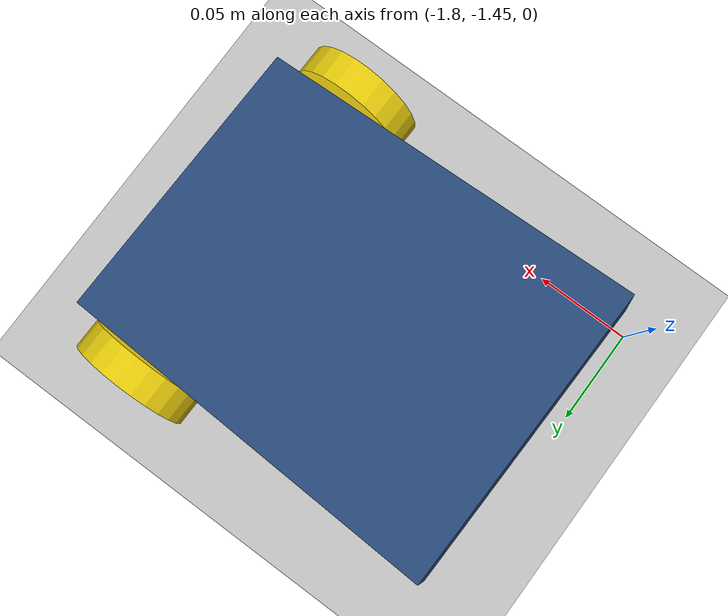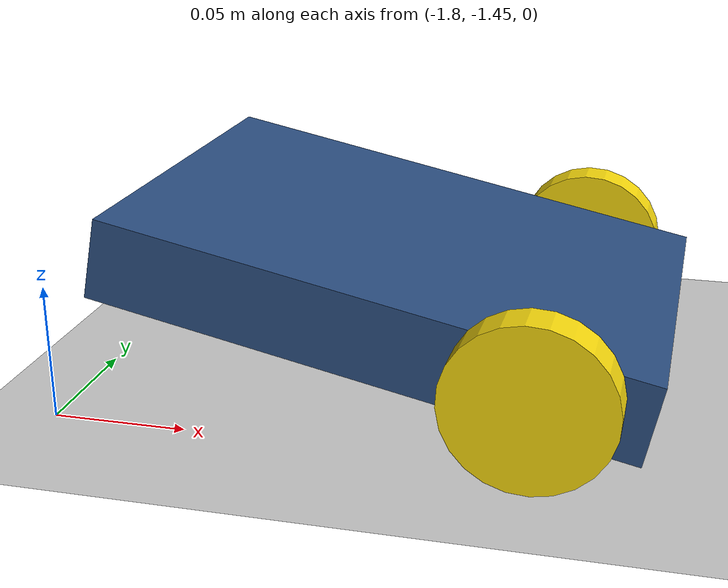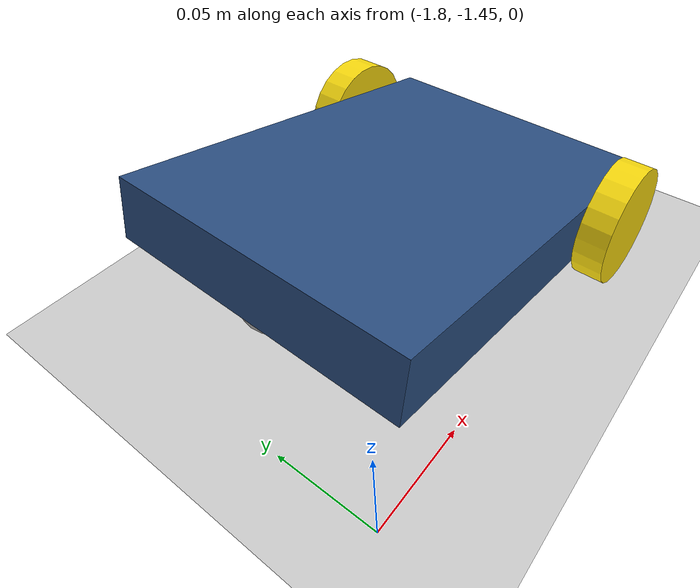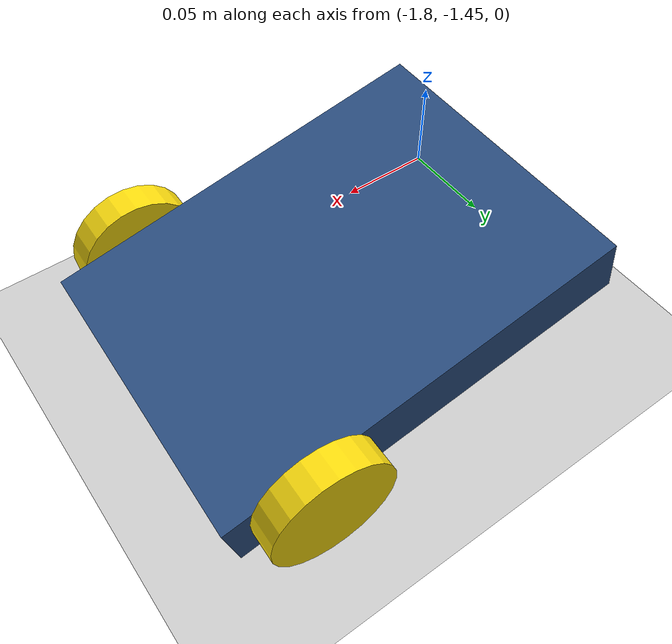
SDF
<sdf version="1.6">
 <world name="default">
  <model name="ground_plane">
   <static>1</static>
   <link name="link">
    <collision name="collision">
     <geometry><plane><normal>0 0 1</normal><size>100 100</size></plane></geometry>
     <surface><friction><ode><mu>100</mu><mu2>50</mu2></ode></friction></surface>
    </collision>
    <visual name="visual">
     <cast_shadows>0</cast_shadows>
     <geometry><plane><normal>0 0 1</normal><size>100 100</size></plane></geometry>
     <material>
      <script><uri>file://media/materials/scripts/gazebo.material</uri><name>Gazebo/Grey</name></script>
     </material>
    </visual>
   </link>
  </model>
  <model name="RCRobot_0">
   <link name="link_1">
    <pose>0.05 -0.0825 0.0025 1.5708 -0 0</pose>
    <inertial>
     <mass>1</mass>
     <inertia><ixx>0.145833</ixx><ixy>0</ixy><ixz>0</ixz><iyy>0.145833</iyy><iyz>0</iyz><izz>0.125</izz></inertia>
    </inertial>
    <visual name="visual">
     <geometry><cylinder><radius>0.03</radius><length>0.015</length></cylinder></geometry>
     <material>
      <lighting>1</lighting>
      <script><uri>file://media/materials/scripts/gazebo.material</uri><name>Gazebo/Grey</name></script>
      <shader type="pixel"><normal_map>__default__</normal_map></shader>
      <ambient>0.98 0.86 0.05 1</ambient>
      <diffuse>0.98 0.86 0.05 1</diffuse>
      <specular>0.98 0.86 0.05 1</specular>
      <emissive>0 0 0 1</emissive>
     </material>
    </visual>
    <collision name="collision">
     <geometry><cylinder><radius>0.03</radius><length>0.015</length></cylinder></geometry>
     <surface>
      <friction>
       <ode><mu>1</mu><mu2>1</mu2><fdir1>0 0 0</fdir1><slip1>0</slip1><slip2>0</slip2></ode>
       <torsional>
        <coefficient>1</coefficient>
        <patch_radius>0</patch_radius>
        <surface_radius>0</surface_radius>
        <use_patch_radius>1</use_patch_radius>
        <ode><slip>0</slip></ode>
       </torsional>
      </friction>
      <bounce><restitution_coefficient>0</restitution_coefficient><threshold>1e+06</threshold></bounce>
      <contact>
       <collide_without_contact>0</collide_without_contact>
       <collide_without_contact_bitmask>1</collide_without_contact_bitmask>
       <collide_bitmask>1</collide_bitmask>
       <ode>
        <soft_cfm>0</soft_cfm>
        <soft_erp>0.2</soft_erp>
        <kp>1e+13</kp>
        <kd>1</kd>
        <max_vel>0.01</max_vel>
        <min_depth>0</min_depth>
       </ode>
       <bullet>
        <split_impulse>1</split_impulse>
        <split_impulse_penetration_threshold>-0.01</split_impulse_penetration_threshold>
        <soft_cfm>0</soft_cfm>
        <soft_erp>0.2</soft_erp>
        <kp>1e+13</kp>
        <kd>1</kd>
       </bullet>
      </contact>
     </surface>
    </collision>
   </link>
   <link name="link_1_clone">
    <pose>0.05 0.0825 0.0025 1.5708 -0 0</pose>
    <inertial>
     <mass>1</mass>
     <inertia><ixx>0.145833</ixx><ixy>0</ixy><ixz>0</ixz><iyy>0.145833</iyy><iyz>0</iyz><izz>0.125</izz></inertia>
    </inertial>
    <visual name="visual">
     <geometry><cylinder><radius>0.03</radius><length>0.015</length></cylinder></geometry>
     <material>
      <lighting>1</lighting>
      <script><uri>file://media/materials/scripts/gazebo.material</uri><name>Gazebo/Grey</name></script>
      <shader type="pixel"><normal_map>__default__</normal_map></shader>
      <ambient>0.98 0.86 0.05 1</ambient>
      <diffuse>0.98 0.86 0.05 1</diffuse>
      <specular>0.98 0.86 0.05 1</specular>
      <emissive>0 0 0 1</emissive>
     </material>
    </visual>
    <collision name="collision">
     <geometry><cylinder><radius>0.03</radius><length>0.015</length></cylinder></geometry>
     <surface>
      <friction>
       <ode><mu>1</mu><mu2>1</mu2><fdir1>0 0 0</fdir1><slip1>0</slip1><slip2>0</slip2></ode>
       <torsional>
        <coefficient>1</coefficient>
        <patch_radius>0</patch_radius>
        <surface_radius>0</surface_radius>
        <use_patch_radius>1</use_patch_radius>
        <ode><slip>0</slip></ode>
       </torsional>
      </friction>
      <bounce><restitution_coefficient>0</restitution_coefficient><threshold>1e+06</threshold></bounce>
      <contact>
       <collide_without_contact>0</collide_without_contact>
       <collide_without_contact_bitmask>1</collide_without_contact_bitmask>
       <collide_bitmask>1</collide_bitmask>
       <ode>
        <soft_cfm>0</soft_cfm>
        <soft_erp>0.2</soft_erp>
        <kp>1e+13</kp>
        <kd>1</kd>
        <max_vel>0.01</max_vel>
        <min_depth>0</min_depth>
       </ode>
       <bullet>
        <split_impulse>1</split_impulse>
        <split_impulse_penetration_threshold>-0.01</split_impulse_penetration_threshold>
        <soft_cfm>0</soft_cfm>
        <soft_erp>0.2</soft_erp>
        <kp>1e+13</kp>
        <kd>1</kd>
       </bullet>
      </contact>
     </surface>
    </collision>
   </link>
   <link name="link_2">
    <pose>-0.01 0 0.0025 0 -0 0</pose>
    <inertial>
     <mass>1</mass>
     <inertia>
      <ixx>0.166667</ixx>
      <ixy>0</ixy>
      <ixz>0</ixz>
      <iyy>0.166667</iyy>
      <iyz>0</iyz>
      <izz>0.166667</izz>
     </inertia>
    </inertial>
    <visual name="visual">
     <geometry><box><size>0.2 0.15 0.03</size></box></geometry>
     <material>
      <lighting>1</lighting>
      <script><uri>file://media/materials/scripts/gazebo.material</uri><name>Gazebo/Grey</name></script>
      <shader type="pixel"><normal_map>__default__</normal_map></shader>
      <ambient>0.17 0.31 0.51 1</ambient>
      <diffuse>0.17 0.31 0.51 1</diffuse>
      <specular>0.17 0.31 0.51 1</specular>
      <emissive>0 0 0 1</emissive>
     </material>
    </visual>
    <collision name="collision">
     <geometry><box><size>0.2 0.15 0.03</size></box></geometry>
     <surface>
      <friction>
       <ode><mu>1</mu><mu2>1</mu2><fdir1>0 0 0</fdir1><slip1>0</slip1><slip2>0</slip2></ode>
       <torsional>
        <coefficient>1</coefficient>
        <patch_radius>0</patch_radius>
        <surface_radius>0</surface_radius>
        <use_patch_radius>1</use_patch_radius>
        <ode><slip>0</slip></ode>
       </torsional>
      </friction>
      <bounce><restitution_coefficient>0</restitution_coefficient><threshold>1e+06</threshold></bounce>
      <contact>
       <collide_without_contact>0</collide_without_contact>
       <collide_without_contact_bitmask>1</collide_without_contact_bitmask>
       <collide_bitmask>1</collide_bitmask>
       <ode>
        <soft_cfm>0</soft_cfm>
        <soft_erp>0.2</soft_erp>
        <kp>1e+13</kp>
        <kd>1</kd>
        <max_vel>0.01</max_vel>
        <min_depth>0</min_depth>
       </ode>
       <bullet>
        <split_impulse>1</split_impulse>
        <split_impulse_penetration_threshold>-0.01</split_impulse_penetration_threshold>
        <soft_cfm>0</soft_cfm>
        <soft_erp>0.2</soft_erp>
        <kp>1e+13</kp>
        <kd>1</kd>
       </bullet>
      </contact>
     </surface>
    </collision>
   </link>
   <link name="link_3">
    <pose>-0.09 0 -0.0075 0 -0 0</pose>
    <inertial>
     <mass>1</mass>
     <inertia><ixx>0.1</ixx><ixy>0</ixy><ixz>0</ixz><iyy>0.1</iyy><iyz>0</iyz><izz>0.1</izz></inertia>
    </inertial>
    <visual name="visual">
     <geometry><sphere><radius>0.02</radius></sphere></geometry>
     <material>
      <lighting>1</lighting>
      <script><uri>file://media/materials/scripts/gazebo.material</uri><name>Gazebo/Grey</name></script>
      <shader type="pixel"><normal_map>__default__</normal_map></shader>
      <ambient>0.96 0.96 0.96 1</ambient>
      <diffuse>0.96 0.96 0.96 1</diffuse>
      <specular>0.96 0.96 0.96 1</specular>
      <emissive>0 0 0 1</emissive>
     </material>
    </visual>
    <collision name="collision">
     <geometry><sphere><radius>0.02</radius></sphere></geometry>
     <surface>
      <friction>
       <ode><mu>1</mu><mu2>1</mu2><fdir1>0 0 0</fdir1><slip1>0</slip1><slip2>0</slip2></ode>
       <torsional>
        <coefficient>1</coefficient>
        <patch_radius>0</patch_radius>
        <surface_radius>0</surface_radius>
        <use_patch_radius>1</use_patch_radius>
        <ode><slip>0</slip></ode>
       </torsional>
      </friction>
      <bounce><restitution_coefficient>0</restitution_coefficient><threshold>1e+06</threshold></bounce>
      <contact>
       <collide_without_contact>0</collide_without_contact>
       <collide_without_contact_bitmask>1</collide_without_contact_bitmask>
       <collide_bitmask>1</collide_bitmask>
       <ode>
        <soft_cfm>0</soft_cfm>
        <soft_erp>0.2</soft_erp>
        <kp>1e+13</kp>
        <kd>1</kd>
        <max_vel>0.01</max_vel>
        <min_depth>0</min_depth>
       </ode>
       <bullet>
        <split_impulse>1</split_impulse>
        <split_impulse_penetration_threshold>-0.01</split_impulse_penetration_threshold>
        <soft_cfm>0</soft_cfm>
        <soft_erp>0.2</soft_erp>
        <kp>1e+13</kp>
        <kd>1</kd>
       </bullet>
      </contact>
     </surface>
    </collision>
   </link>
   <joint name="link_2_JOINT_10" type="revolute">
    <parent>link_2</parent>
    <child>link_1</child>
    <axis>
     <xyz>0 0 1</xyz>
     <use_parent_model_frame>0</use_parent_model_frame>
     <limit>
      <lower>-1.79769e+308</lower>
      <upper>1.79769e+308</upper>
      <effort>-1</effort>
      <velocity>-1</velocity>
     </limit>
     <dynamics>
      <spring_reference>0</spring_reference>
      <spring_stiffness>0</spring_stiffness>
      <damping>0</damping>
     </dynamics>
    </axis>
    <physics>
     <ode><limit><cfm>0</cfm><erp>0.2</erp></limit><suspension><cfm>0</cfm><erp>0.2</erp></suspension></ode>
    </physics>
   </joint>
   <joint name="link_2_JOINT_11" type="revolute">
    <parent>link_2</parent>
    <child>link_1_clone</child>
    <axis>
     <xyz>1 0 0</xyz>
     <use_parent_model_frame>0</use_parent_model_frame>
     <limit>
      <lower>-1.79769e+308</lower>
      <upper>1.79769e+308</upper>
      <effort>-1</effort>
      <velocity>-1</velocity>
     </limit>
     <dynamics>
      <spring_reference>0</spring_reference>
      <spring_stiffness>0</spring_stiffness>
      <damping>0</damping>
     </dynamics>
    </axis>
    <physics>
     <ode><limit><cfm>0</cfm><erp>0.2</erp></limit><suspension><cfm>0</cfm><erp>0.2</erp></suspension></ode>
    </physics>
   </joint>
   <joint name="link_2_JOINT_13" type="ball">
    <parent>link_2</parent>
    <child>link_3</child>
    <physics>
     <ode><limit><cfm>0</cfm><erp>0.2</erp></limit><suspension><cfm>0</cfm><erp>0.2</erp></suspension></ode>
    </physics>
   </joint>
   <static>0</static>
   <pose>-1.6731 -1.37639 0.037605 -1e-06 0.202451 -0.021238</pose>
  </model>
 </world>
</sdf>
